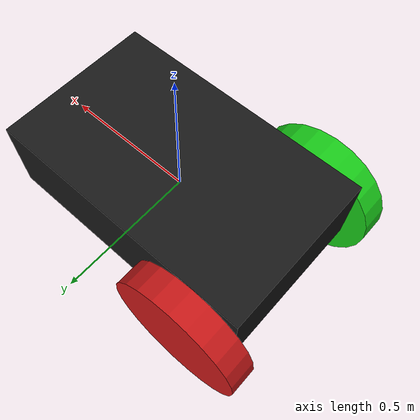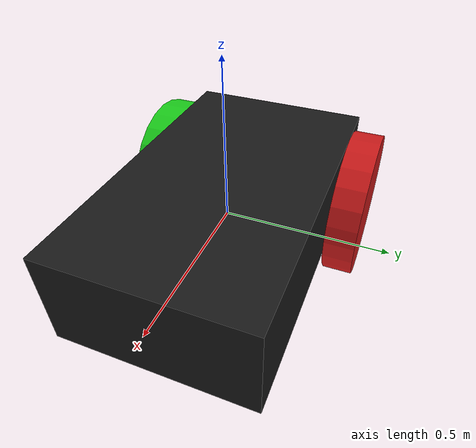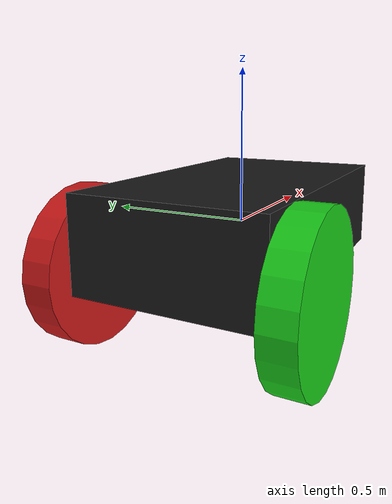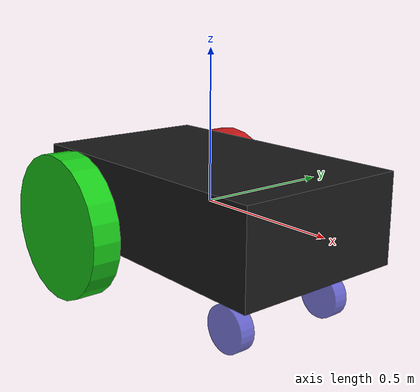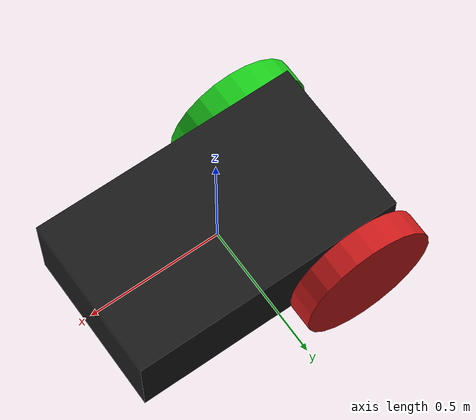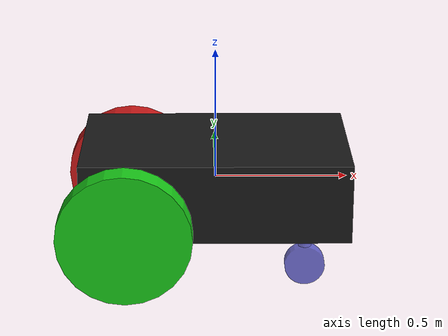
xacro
<?xml version="1.0"?>
<robot xmlns:xacro="http://www.ros.org/wiki/xacro" name="simple_vehicle">
  <xacro:include filename="$(find description_simple_car)/urdf/utilities.urdf.xacro" />

  <!-- ////////                  PROPERTIES                    ///////// -->
  <xacro:arg name="use_sim" default="false"/>

  <xacro:property name="body_mass" value="100" />
  <xacro:property name="body_width" value="0.6" />
  <xacro:property name="body_length" value="1" />
  <xacro:property name="body_height" value="0.3" />
  <xacro:property name="wheel_mass" value="10" />
  <xacro:property name="wheel_length" value="0.1" />
  <xacro:property name="wheel_diameter" value="0.5" />
  <xacro:property name="caster_support_length" value="0.05" />
  <xacro:property name="caster_support_diameter" value="0.05" />
  <xacro:property name="caster_length" value="0.05" />
  <xacro:property name="caster_diameter" value="0.15" />

  <!-- ////////                  MATERIALS                     ///////// -->

  <material name="black">
    <color rgba="0.1 0.1 0.1 0.9"/>
  </material>
  <material name="blue">
    <color rgba="0.3 0.3 0.8 0.8"/>
  </material>
  <material name="red">
    <color rgba="0.8 0.1 0.1 1.0"/>
  </material>
  <material name="green">
    <color rgba="0.1 0.8 0.1 1.0"/>
  </material>

  <!-- ////////                  BODY                          ///////// -->

  <link name="body">
    <xacro:simple_shape color="black" mass="${body_mass}">
      <origin/>
      <box size="${body_length} ${body_width} ${body_height}"/>
      <xacro:inertial_box mass="${body_mass}" length="${body_length}" width="${body_width}" height="${body_height}"/>
    </xacro:simple_shape>
  </link>

  <!-- ////////                  WHEELS                        ///////// -->

  <!-- /////////////////////   Right Wheel  //////////////////////////// -->
  <joint name="joint_body_to_right_wheel" type="continuous">
    <parent link="body"/>
    <child link="wheel_right"/>
    <origin xyz="${-body_length/3} ${-body_width/2} ${(body_height-wheel_diameter)/2}" rpy="0 0 0"/>
    <axis xyz="0 1 0"/>
    <!-- effort = max torque (N·m), currently ignored because we use 'velocity' command interface -->
    <!-- velocity = max rad/s — this is what actually gets enforced when using 'velocity' command interface -->
    <limit effort="10.0" velocity="1000"/>
  </joint>

  <link name="wheel_right">
    <xacro:simple_shape color="green" mass="${wheel_mass}" mu="0.8" kp="200" kd="200">
      <origin xyz="0 ${-wheel_length/2} 0" rpy="${pi/2} 0 0"/>
      <cylinder length="${wheel_length}" radius="${wheel_diameter/2}"/>
      <xacro:inertial_null mass="${wheel_mass}"/>
    </xacro:simple_shape>
  </link>

  <!-- /////////////////////   Left Wheel  //////////////////////////// -->
  <joint name="joint_body_to_left_wheel" type="continuous">
    <parent link="body"/>
    <child link="wheel_left"/>
    <origin xyz="${-body_length/3} ${body_width/2} ${(body_height-wheel_diameter)/2}" rpy="0 0 0"/>
    <axis xyz="0 1 0"/>
    <!-- effort = max torque (N·m), currently ignored because we use 'velocity' command interface -->
    <!-- velocity = max rad/s — this is what actually gets enforced when using 'velocity' command interface -->
    <limit effort="10.0" velocity="1000"/>
  </joint>

  <link name="wheel_left">
    <xacro:simple_shape color="red" mass="${wheel_mass}" mu="0.8" kp="200" kd="200">
      <origin xyz="0 ${wheel_length/2} 0" rpy="${-pi/2} 0 0"/>
      <cylinder length="${wheel_length}" radius="${wheel_diameter/2}"/>
      <xacro:inertial_null mass="${wheel_mass}"/>
    </xacro:simple_shape>
  </link>

  <!-- ////////               FRONT CASTERS                    ///////// -->

  <!-- /////////////////////   Left Caster  //////////////////////////// -->

  <!-- ///////////////////   Actuated support  ///////////////////////// -->
  <joint name="joint_body_to_front_left_caster_support" type="revolute">
    <parent link="body"/>
    <child link="front_left_caster_support"/>
    <origin xyz="${body_length/3} ${body_width/3} ${-body_height/2}" rpy="0 0 0"/>
    <axis xyz="0 0 1"/>
    <limit effort="1000.0" lower="${-pi}" upper="${pi}" velocity="0.5"/>
  </joint>

  <link name="front_left_caster_support">
    <xacro:simple_shape color="blue" mass="0.1">
      <origin xyz="0 0 ${-caster_support_length/2}" rpy="0 0 0"/>
      <cylinder length="${caster_support_length}" radius="${caster_support_diameter/2}"/>
      <xacro:inertial_null mass="0.1"/>
    </xacro:simple_shape>
  </link>

  <!-- ///////////////////     Free Wheel     ////////////////////////// -->
  <joint name="joint_left_caster_support_to_wheel" type="continuous">
    <parent link="front_left_caster_support"/>
    <child link="wheel_caster_left"/>
    <origin xyz="0 0 ${-caster_support_length -caster_diameter/2}" rpy="0 0 0"/>
    <axis xyz="0 1 0"/>
  </joint>

  <link name="wheel_caster_left">
    <xacro:simple_shape color="blue" mass="0.1" mu="0.8" kp="200" kd="200">
      <origin xyz="0 0 0" rpy="${-pi/2} 0 0"/>
      <cylinder length="${caster_length}" radius="${caster_diameter/2}"/>
      <xacro:inertial_null mass="0.1"/>
    </xacro:simple_shape>
  </link>

  <!-- /////////////////////   Right Caster  //////////////////////////// -->

  <!-- ///////////////////   Actuated support  ///////////////////////// -->
  <joint name="joint_body_to_front_right_caster_support" type="revolute">
    <parent link="body"/>
    <child link="front_right_caster_support"/>
    <origin xyz="${body_length/3} ${-body_width/3} ${-body_height/2}" rpy="0 0 0"/>
    <axis xyz="0 0 1"/>
    <limit effort="1000.0" lower="${-pi}" upper="${pi}" velocity="0.5"/>
  </joint>

  <link name="front_right_caster_support">
    <xacro:simple_shape color="blue" mass="0.1">
      <origin xyz="0 0 ${-caster_support_length/2}" rpy="0 0 0"/>
      <cylinder length="${caster_support_length}" radius="${caster_support_diameter/2}"/>
      <xacro:inertial_null mass="0.1"/>
    </xacro:simple_shape>
  </link>

  <!-- ///////////////////     Free Wheel     ////////////////////////// -->
  <joint name="joint_right_caster_support_to_wheel" type="continuous">
    <parent link="front_right_caster_support"/>
    <child link="wheel_caster_right"/>
    <origin xyz="0 0 ${-caster_support_length -caster_diameter/2}" rpy="0 0 0"/>
    <axis xyz="0 1 0"/>
  </joint>

  <link name="wheel_caster_right">
    <xacro:simple_shape color="blue" mass="0.1" mu="0.8" kp="200" kd="200">
      <origin xyz="0 0 0" rpy="${-pi/2} 0 0"/>
      <cylinder length="${caster_length}" radius="${caster_diameter/2}"/>
      <xacro:inertial_null mass="0.1"/>
    </xacro:simple_shape>
  </link>

  <!-- ////////              ROS2 CONTROL                      ///////// -->
  <xacro:if value="$(arg use_sim)">
    <xacro:include filename="ros2_control_simulation.urdf.xacro"/>
  </xacro:if>
  <xacro:unless value="$(arg use_sim)">
    <xacro:include filename="ros2_control_real.urdf.xacro"/>
  </xacro:unless>

</robot>

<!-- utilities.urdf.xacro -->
<xacro:macros xmlns:xacro="http://www.ros.org/wiki/xacro">

  <!-- //////////  SIMPLE MASS WITH NEGLIGIBLE INERTIA   /////////////// -->
  <xacro:macro name="inertial_null" params="mass">
    <inertial>
      <mass value="${mass}" />
      <inertia ixx="1e-3" ixy="0.0" ixz="0.0"
               iyy="1e-3" iyz="0.0"
               izz="1e-3" />
    </inertial>
  </xacro:macro>

  <!-- ////////  INERTIA OF A SIMPLE BOX OF CONSTANT DENSITY   ///////// -->
  <xacro:macro name="inertial_box" params="mass length width height">
    <inertial>
      <mass value="${mass}" />
      <inertia ixx="${(1/12) * mass * (width**2 + height**2)}"
               ixy="0.0" ixz="0.0"
               iyy="${(1/12) * mass * (length**2 + height**2)}"
               iyz="0.0"
               izz="${(1/12) * mass * (length**2 + width**2)}"
      />
    </inertial>
  </xacro:macro>

  <!-- ////  QUICKLY GENERATE SIMPLE SHAPES (BOX, CYLINDER, ...)  ////// -->
  <xacro:macro name="simple_shape" params="color mass mu:=-1 kp:=-1 kd:=-1 *origin *shape *inertial">
      <visual>
        <xacro:insert_block name="origin"/>
        <geometry>
          <xacro:insert_block name="shape" />
        </geometry>
        <material name="${color}"/>
      </visual>

      <collision>
        <xacro:insert_block name="origin"/>
        <geometry>
          <xacro:insert_block name="shape" />
        </geometry>
        <xacro:if value="${mu!=-1 and kp!=-1 and kd!=-1}">
          <contact_coefficients mu="${mu}" kp="${kp}" kd="${kd}"/>
        </xacro:if>
      </collision>

      <xacro:insert_block name="inertial"/>
  </xacro:macro>

</xacro:macros>
